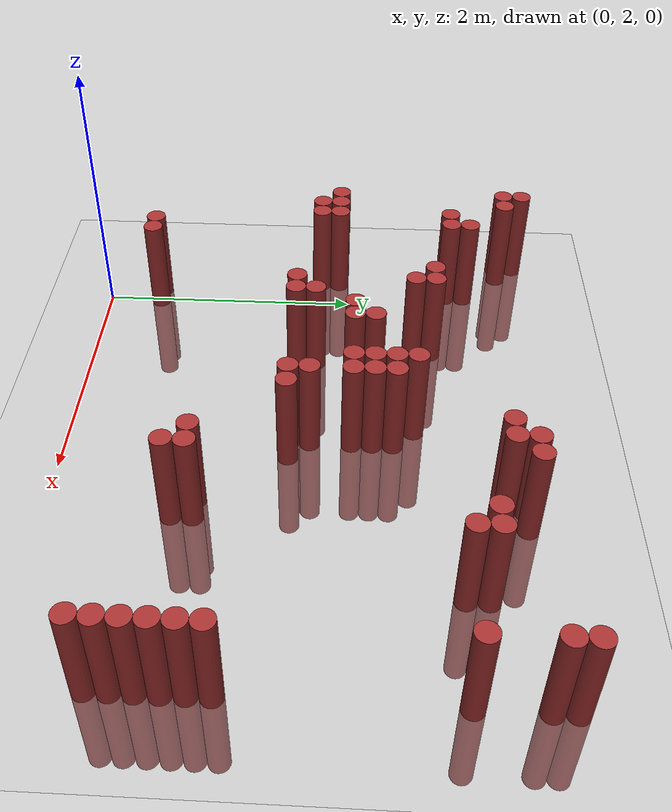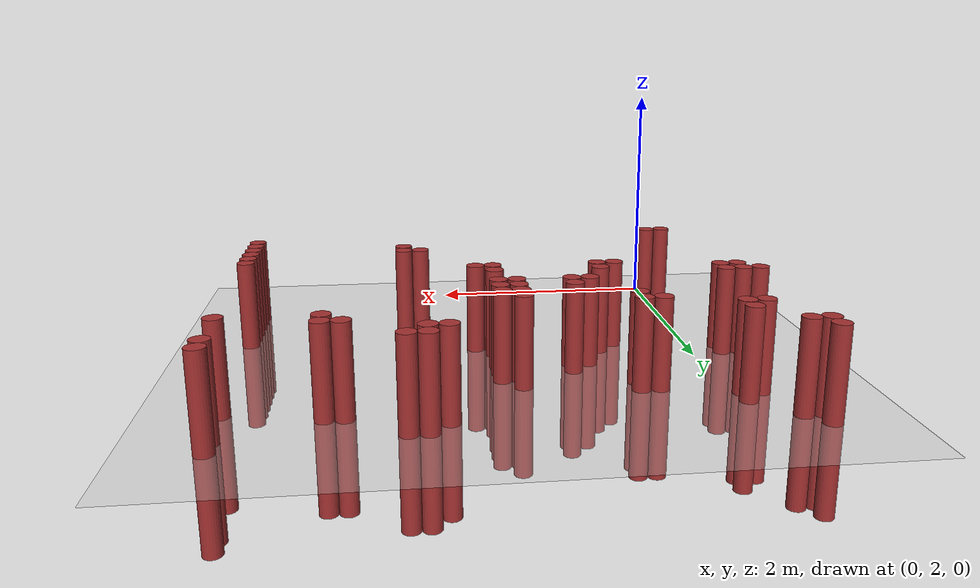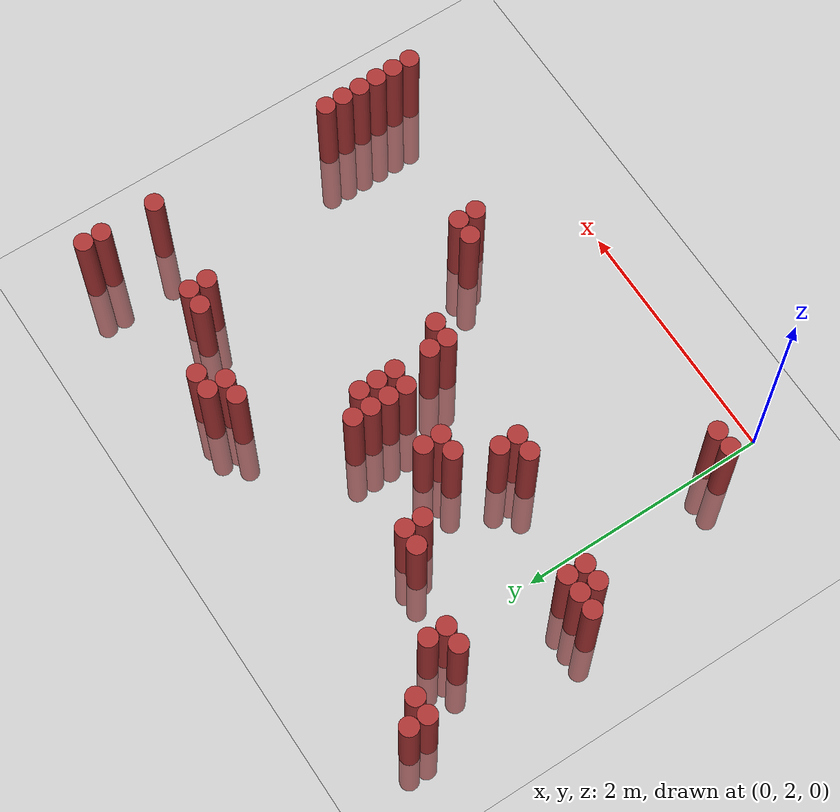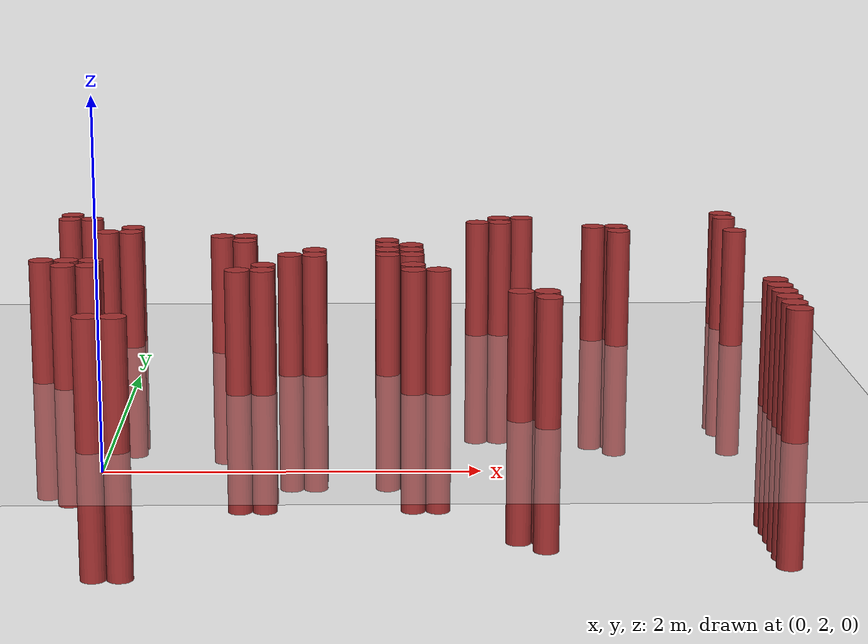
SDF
<sdf version="1.6">
 <world name="default">
  <model name="ground_plane">
   <static>1</static>
   <link name="link">
    <collision name="collision">
     <geometry><plane><normal>0 0 1</normal><size>100 100</size></plane></geometry>
     <surface><friction><ode><mu>100</mu><mu2>50</mu2></ode></friction></surface>
    </collision>
    <visual name="visual">
     <cast_shadows>0</cast_shadows>
     <geometry><plane><normal>0 0 1</normal><size>100 100</size></plane></geometry>
     <material>
      <script><uri>file://media/materials/scripts/gazebo.material</uri><name>Gazebo/Grey</name></script>
     </material>
    </visual>
   </link>
  </model>
  <model name="unit_cylinder_307">
   <static>1</static>
   <pose>-0.575000 3.925000 0.000000 0.000000 0.000000 0.000000</pose>
   <link name="link">
    <inertial>
     <mass>1</mass>
     <inertia><ixx>0.145833</ixx><ixy>0</ixy><ixz>0</ixz><iyy>0.145833</iyy><iyz>0</iyz><izz>0.125</izz></inertia>
    </inertial>
    <collision name="collision">
     <geometry><cylinder><radius>0.075000</radius><length>1.5</length></cylinder></geometry>
    </collision>
    <visual name="visual">
     <geometry><cylinder><radius>0.075000</radius><length>1.5</length></cylinder></geometry>
     <material>
      <ambient>0.648000 0.192000 0.192000 1</ambient>
      <diffuse>0.648000 0.192000 0.192000 1</diffuse>
     </material>
     <material>
      <script><name>Gazebo/Grey</name><uri>file://media/materials/scripts/gazebo.material</uri></script>
     </material>
    </visual>
   </link>
  </model>
  <model name="unit_cylinder_308">
   <static>1</static>
   <pose>-0.575000 5.275000 0.000000 0.000000 0.000000 0.000000</pose>
   <link name="link">
    <inertial>
     <mass>1</mass>
     <inertia><ixx>0.145833</ixx><ixy>0</ixy><ixz>0</ixz><iyy>0.145833</iyy><iyz>0</iyz><izz>0.125</izz></inertia>
    </inertial>
    <collision name="collision">
     <geometry><cylinder><radius>0.075000</radius><length>1.5</length></cylinder></geometry>
    </collision>
    <visual name="visual">
     <geometry><cylinder><radius>0.075000</radius><length>1.5</length></cylinder></geometry>
     <material>
      <ambient>0.648000 0.192000 0.192000 1</ambient>
      <diffuse>0.648000 0.192000 0.192000 1</diffuse>
     </material>
     <material>
      <script><name>Gazebo/Grey</name><uri>file://media/materials/scripts/gazebo.material</uri></script>
     </material>
    </visual>
   </link>
  </model>
  <model name="unit_cylinder_309">
   <static>1</static>
   <pose>-0.575000 5.425000 0.000000 0.000000 0.000000 0.000000</pose>
   <link name="link">
    <inertial>
     <mass>1</mass>
     <inertia><ixx>0.145833</ixx><ixy>0</ixy><ixz>0</ixz><iyy>0.145833</iyy><iyz>0</iyz><izz>0.125</izz></inertia>
    </inertial>
    <collision name="collision">
     <geometry><cylinder><radius>0.075000</radius><length>1.5</length></cylinder></geometry>
    </collision>
    <visual name="visual">
     <geometry><cylinder><radius>0.075000</radius><length>1.5</length></cylinder></geometry>
     <material>
      <ambient>0.648000 0.192000 0.192000 1</ambient>
      <diffuse>0.648000 0.192000 0.192000 1</diffuse>
     </material>
     <material>
      <script><name>Gazebo/Grey</name><uri>file://media/materials/scripts/gazebo.material</uri></script>
     </material>
    </visual>
   </link>
  </model>
  <model name="unit_cylinder_310">
   <static>1</static>
   <pose>-0.425000 3.775000 0.000000 0.000000 0.000000 0.000000</pose>
   <link name="link">
    <inertial>
     <mass>1</mass>
     <inertia><ixx>0.145833</ixx><ixy>0</ixy><ixz>0</ixz><iyy>0.145833</iyy><iyz>0</iyz><izz>0.125</izz></inertia>
    </inertial>
    <collision name="collision">
     <geometry><cylinder><radius>0.075000</radius><length>1.5</length></cylinder></geometry>
    </collision>
    <visual name="visual">
     <geometry><cylinder><radius>0.075000</radius><length>1.5</length></cylinder></geometry>
     <material>
      <ambient>0.648000 0.192000 0.192000 1</ambient>
      <diffuse>0.648000 0.192000 0.192000 1</diffuse>
     </material>
     <material>
      <script><name>Gazebo/Grey</name><uri>file://media/materials/scripts/gazebo.material</uri></script>
     </material>
    </visual>
   </link>
  </model>
  <model name="unit_cylinder_311">
   <static>1</static>
   <pose>-0.425000 3.925000 0.000000 0.000000 0.000000 0.000000</pose>
   <link name="link">
    <inertial>
     <mass>1</mass>
     <inertia><ixx>0.145833</ixx><ixy>0</ixy><ixz>0</ixz><iyy>0.145833</iyy><iyz>0</iyz><izz>0.125</izz></inertia>
    </inertial>
    <collision name="collision">
     <geometry><cylinder><radius>0.075000</radius><length>1.5</length></cylinder></geometry>
    </collision>
    <visual name="visual">
     <geometry><cylinder><radius>0.075000</radius><length>1.5</length></cylinder></geometry>
     <material>
      <ambient>0.648000 0.192000 0.192000 1</ambient>
      <diffuse>0.648000 0.192000 0.192000 1</diffuse>
     </material>
     <material>
      <script><name>Gazebo/Grey</name><uri>file://media/materials/scripts/gazebo.material</uri></script>
     </material>
    </visual>
   </link>
  </model>
  <model name="unit_cylinder_312">
   <static>1</static>
   <pose>-0.425000 5.275000 0.000000 0.000000 0.000000 0.000000</pose>
   <link name="link">
    <inertial>
     <mass>1</mass>
     <inertia><ixx>0.145833</ixx><ixy>0</ixy><ixz>0</ixz><iyy>0.145833</iyy><iyz>0</iyz><izz>0.125</izz></inertia>
    </inertial>
    <collision name="collision">
     <geometry><cylinder><radius>0.075000</radius><length>1.5</length></cylinder></geometry>
    </collision>
    <visual name="visual">
     <geometry><cylinder><radius>0.075000</radius><length>1.5</length></cylinder></geometry>
     <material>
      <ambient>0.648000 0.192000 0.192000 1</ambient>
      <diffuse>0.648000 0.192000 0.192000 1</diffuse>
     </material>
     <material>
      <script><name>Gazebo/Grey</name><uri>file://media/materials/scripts/gazebo.material</uri></script>
     </material>
    </visual>
   </link>
  </model>
  <model name="unit_cylinder_313">
   <static>1</static>
   <pose>-0.275000 3.775000 0.000000 0.000000 0.000000 0.000000</pose>
   <link name="link">
    <inertial>
     <mass>1</mass>
     <inertia><ixx>0.145833</ixx><ixy>0</ixy><ixz>0</ixz><iyy>0.145833</iyy><iyz>0</iyz><izz>0.125</izz></inertia>
    </inertial>
    <collision name="collision">
     <geometry><cylinder><radius>0.075000</radius><length>1.5</length></cylinder></geometry>
    </collision>
    <visual name="visual">
     <geometry><cylinder><radius>0.075000</radius><length>1.5</length></cylinder></geometry>
     <material>
      <ambient>0.648000 0.192000 0.192000 1</ambient>
      <diffuse>0.648000 0.192000 0.192000 1</diffuse>
     </material>
     <material>
      <script><name>Gazebo/Grey</name><uri>file://media/materials/scripts/gazebo.material</uri></script>
     </material>
    </visual>
   </link>
  </model>
  <model name="unit_cylinder_314">
   <static>1</static>
   <pose>-0.275000 3.925000 0.000000 0.000000 0.000000 0.000000</pose>
   <link name="link">
    <inertial>
     <mass>1</mass>
     <inertia><ixx>0.145833</ixx><ixy>0</ixy><ixz>0</ixz><iyy>0.145833</iyy><iyz>0</iyz><izz>0.125</izz></inertia>
    </inertial>
    <collision name="collision">
     <geometry><cylinder><radius>0.075000</radius><length>1.5</length></cylinder></geometry>
    </collision>
    <visual name="visual">
     <geometry><cylinder><radius>0.075000</radius><length>1.5</length></cylinder></geometry>
     <material>
      <ambient>0.648000 0.192000 0.192000 1</ambient>
      <diffuse>0.648000 0.192000 0.192000 1</diffuse>
     </material>
     <material>
      <script><name>Gazebo/Grey</name><uri>file://media/materials/scripts/gazebo.material</uri></script>
     </material>
    </visual>
   </link>
  </model>
  <model name="unit_cylinder_315">
   <static>1</static>
   <pose>-0.275000 4.825000 0.000000 0.000000 0.000000 0.000000</pose>
   <link name="link">
    <inertial>
     <mass>1</mass>
     <inertia><ixx>0.145833</ixx><ixy>0</ixy><ixz>0</ixz><iyy>0.145833</iyy><iyz>0</iyz><izz>0.125</izz></inertia>
    </inertial>
    <collision name="collision">
     <geometry><cylinder><radius>0.075000</radius><length>1.5</length></cylinder></geometry>
    </collision>
    <visual name="visual">
     <geometry><cylinder><radius>0.075000</radius><length>1.5</length></cylinder></geometry>
     <material>
      <ambient>0.648000 0.192000 0.192000 1</ambient>
      <diffuse>0.648000 0.192000 0.192000 1</diffuse>
     </material>
     <material>
      <script><name>Gazebo/Grey</name><uri>file://media/materials/scripts/gazebo.material</uri></script>
     </material>
    </visual>
   </link>
  </model>
  <model name="unit_cylinder_317">
   <static>1</static>
   <pose>-0.125000 2.425000 0.000000 0.000000 0.000000 0.000000</pose>
   <link name="link">
    <inertial>
     <mass>1</mass>
     <inertia><ixx>0.145833</ixx><ixy>0</ixy><ixz>0</ixz><iyy>0.145833</iyy><iyz>0</iyz><izz>0.125</izz></inertia>
    </inertial>
    <collision name="collision">
     <geometry><cylinder><radius>0.075000</radius><length>1.5</length></cylinder></geometry>
    </collision>
    <visual name="visual">
     <geometry><cylinder><radius>0.075000</radius><length>1.5</length></cylinder></geometry>
     <material>
      <ambient>0.648000 0.192000 0.192000 1</ambient>
      <diffuse>0.648000 0.192000 0.192000 1</diffuse>
     </material>
     <material>
      <script><name>Gazebo/Grey</name><uri>file://media/materials/scripts/gazebo.material</uri></script>
     </material>
    </visual>
   </link>
  </model>
  <model name="unit_cylinder_318">
   <static>1</static>
   <pose>-0.125000 4.825000 0.000000 0.000000 0.000000 0.000000</pose>
   <link name="link">
    <inertial>
     <mass>1</mass>
     <inertia><ixx>0.145833</ixx><ixy>0</ixy><ixz>0</ixz><iyy>0.145833</iyy><iyz>0</iyz><izz>0.125</izz></inertia>
    </inertial>
    <collision name="collision">
     <geometry><cylinder><radius>0.075000</radius><length>1.5</length></cylinder></geometry>
    </collision>
    <visual name="visual">
     <geometry><cylinder><radius>0.075000</radius><length>1.5</length></cylinder></geometry>
     <material>
      <ambient>0.648000 0.192000 0.192000 1</ambient>
      <diffuse>0.648000 0.192000 0.192000 1</diffuse>
     </material>
     <material>
      <script><name>Gazebo/Grey</name><uri>file://media/materials/scripts/gazebo.material</uri></script>
     </material>
    </visual>
   </link>
  </model>
  <model name="unit_cylinder_319">
   <static>1</static>
   <pose>-0.125000 4.975000 0.000000 0.000000 0.000000 0.000000</pose>
   <link name="link">
    <inertial>
     <mass>1</mass>
     <inertia><ixx>0.145833</ixx><ixy>0</ixy><ixz>0</ixz><iyy>0.145833</iyy><iyz>0</iyz><izz>0.125</izz></inertia>
    </inertial>
    <collision name="collision">
     <geometry><cylinder><radius>0.075000</radius><length>1.5</length></cylinder></geometry>
    </collision>
    <visual name="visual">
     <geometry><cylinder><radius>0.075000</radius><length>1.5</length></cylinder></geometry>
     <material>
      <ambient>0.648000 0.192000 0.192000 1</ambient>
      <diffuse>0.648000 0.192000 0.192000 1</diffuse>
     </material>
     <material>
      <script><name>Gazebo/Grey</name><uri>file://media/materials/scripts/gazebo.material</uri></script>
     </material>
    </visual>
   </link>
  </model>
  <model name="unit_cylinder_320">
   <static>1</static>
   <pose>0.025000 2.425000 0.000000 0.000000 0.000000 0.000000</pose>
   <link name="link">
    <inertial>
     <mass>1</mass>
     <inertia><ixx>0.145833</ixx><ixy>0</ixy><ixz>0</ixz><iyy>0.145833</iyy><iyz>0</iyz><izz>0.125</izz></inertia>
    </inertial>
    <collision name="collision">
     <geometry><cylinder><radius>0.075000</radius><length>1.5</length></cylinder></geometry>
    </collision>
    <visual name="visual">
     <geometry><cylinder><radius>0.075000</radius><length>1.5</length></cylinder></geometry>
     <material>
      <ambient>0.648000 0.192000 0.192000 1</ambient>
      <diffuse>0.648000 0.192000 0.192000 1</diffuse>
     </material>
     <material>
      <script><name>Gazebo/Grey</name><uri>file://media/materials/scripts/gazebo.material</uri></script>
     </material>
    </visual>
   </link>
  </model>
  <model name="unit_cylinder_328">
   <static>1</static>
   <pose>0.475000 4.675000 0.000000 0.000000 0.000000 0.000000</pose>
   <link name="link">
    <inertial>
     <mass>1</mass>
     <inertia><ixx>0.145833</ixx><ixy>0</ixy><ixz>0</ixz><iyy>0.145833</iyy><iyz>0</iyz><izz>0.125</izz></inertia>
    </inertial>
    <collision name="collision">
     <geometry><cylinder><radius>0.075000</radius><length>1.5</length></cylinder></geometry>
    </collision>
    <visual name="visual">
     <geometry><cylinder><radius>0.075000</radius><length>1.5</length></cylinder></geometry>
     <material>
      <ambient>0.648000 0.192000 0.192000 1</ambient>
      <diffuse>0.648000 0.192000 0.192000 1</diffuse>
     </material>
     <material>
      <script><name>Gazebo/Grey</name><uri>file://media/materials/scripts/gazebo.material</uri></script>
     </material>
    </visual>
   </link>
  </model>
  <model name="unit_cylinder_331">
   <static>1</static>
   <pose>0.625000 3.625000 0.000000 0.000000 0.000000 0.000000</pose>
   <link name="link">
    <inertial>
     <mass>1</mass>
     <inertia><ixx>0.145833</ixx><ixy>0</ixy><ixz>0</ixz><iyy>0.145833</iyy><iyz>0</iyz><izz>0.125</izz></inertia>
    </inertial>
    <collision name="collision">
     <geometry><cylinder><radius>0.075000</radius><length>1.5</length></cylinder></geometry>
    </collision>
    <visual name="visual">
     <geometry><cylinder><radius>0.075000</radius><length>1.5</length></cylinder></geometry>
     <material>
      <ambient>0.648000 0.192000 0.192000 1</ambient>
      <diffuse>0.648000 0.192000 0.192000 1</diffuse>
     </material>
     <material>
      <script><name>Gazebo/Grey</name><uri>file://media/materials/scripts/gazebo.material</uri></script>
     </material>
    </visual>
   </link>
  </model>
  <model name="unit_cylinder_332">
   <static>1</static>
   <pose>0.625000 4.525000 0.000000 0.000000 0.000000 0.000000</pose>
   <link name="link">
    <inertial>
     <mass>1</mass>
     <inertia><ixx>0.145833</ixx><ixy>0</ixy><ixz>0</ixz><iyy>0.145833</iyy><iyz>0</iyz><izz>0.125</izz></inertia>
    </inertial>
    <collision name="collision">
     <geometry><cylinder><radius>0.075000</radius><length>1.5</length></cylinder></geometry>
    </collision>
    <visual name="visual">
     <geometry><cylinder><radius>0.075000</radius><length>1.5</length></cylinder></geometry>
     <material>
      <ambient>0.648000 0.192000 0.192000 1</ambient>
      <diffuse>0.648000 0.192000 0.192000 1</diffuse>
     </material>
     <material>
      <script><name>Gazebo/Grey</name><uri>file://media/materials/scripts/gazebo.material</uri></script>
     </material>
    </visual>
   </link>
  </model>
  <model name="unit_cylinder_333">
   <static>1</static>
   <pose>0.625000 4.675000 0.000000 0.000000 0.000000 0.000000</pose>
   <link name="link">
    <inertial>
     <mass>1</mass>
     <inertia><ixx>0.145833</ixx><ixy>0</ixy><ixz>0</ixz><iyy>0.145833</iyy><iyz>0</iyz><izz>0.125</izz></inertia>
    </inertial>
    <collision name="collision">
     <geometry><cylinder><radius>0.075000</radius><length>1.5</length></cylinder></geometry>
    </collision>
    <visual name="visual">
     <geometry><cylinder><radius>0.075000</radius><length>1.5</length></cylinder></geometry>
     <material>
      <ambient>0.648000 0.192000 0.192000 1</ambient>
      <diffuse>0.648000 0.192000 0.192000 1</diffuse>
     </material>
     <material>
      <script><name>Gazebo/Grey</name><uri>file://media/materials/scripts/gazebo.material</uri></script>
     </material>
    </visual>
   </link>
  </model>
  <model name="unit_cylinder_336">
   <static>1</static>
   <pose>0.775000 3.625000 0.000000 0.000000 0.000000 0.000000</pose>
   <link name="link">
    <inertial>
     <mass>1</mass>
     <inertia><ixx>0.145833</ixx><ixy>0</ixy><ixz>0</ixz><iyy>0.145833</iyy><iyz>0</iyz><izz>0.125</izz></inertia>
    </inertial>
    <collision name="collision">
     <geometry><cylinder><radius>0.075000</radius><length>1.5</length></cylinder></geometry>
    </collision>
    <visual name="visual">
     <geometry><cylinder><radius>0.075000</radius><length>1.5</length></cylinder></geometry>
     <material>
      <ambient>0.648000 0.192000 0.192000 1</ambient>
      <diffuse>0.648000 0.192000 0.192000 1</diffuse>
     </material>
     <material>
      <script><name>Gazebo/Grey</name><uri>file://media/materials/scripts/gazebo.material</uri></script>
     </material>
    </visual>
   </link>
  </model>
  <model name="unit_cylinder_337">
   <static>1</static>
   <pose>0.775000 3.775000 0.000000 0.000000 0.000000 0.000000</pose>
   <link name="link">
    <inertial>
     <mass>1</mass>
     <inertia><ixx>0.145833</ixx><ixy>0</ixy><ixz>0</ixz><iyy>0.145833</iyy><iyz>0</iyz><izz>0.125</izz></inertia>
    </inertial>
    <collision name="collision">
     <geometry><cylinder><radius>0.075000</radius><length>1.5</length></cylinder></geometry>
    </collision>
    <visual name="visual">
     <geometry><cylinder><radius>0.075000</radius><length>1.5</length></cylinder></geometry>
     <material>
      <ambient>0.648000 0.192000 0.192000 1</ambient>
      <diffuse>0.648000 0.192000 0.192000 1</diffuse>
     </material>
     <material>
      <script><name>Gazebo/Grey</name><uri>file://media/materials/scripts/gazebo.material</uri></script>
     </material>
    </visual>
   </link>
  </model>
  <model name="unit_cylinder_340">
   <static>1</static>
   <pose>0.925000 4.075000 0.000000 0.000000 0.000000 0.000000</pose>
   <link name="link">
    <inertial>
     <mass>1</mass>
     <inertia><ixx>0.145833</ixx><ixy>0</ixy><ixz>0</ixz><iyy>0.145833</iyy><iyz>0</iyz><izz>0.125</izz></inertia>
    </inertial>
    <collision name="collision">
     <geometry><cylinder><radius>0.075000</radius><length>1.5</length></cylinder></geometry>
    </collision>
    <visual name="visual">
     <geometry><cylinder><radius>0.075000</radius><length>1.5</length></cylinder></geometry>
     <material>
      <ambient>0.648000 0.192000 0.192000 1</ambient>
      <diffuse>0.648000 0.192000 0.192000 1</diffuse>
     </material>
     <material>
      <script><name>Gazebo/Grey</name><uri>file://media/materials/scripts/gazebo.material</uri></script>
     </material>
    </visual>
   </link>
  </model>
  <model name="unit_cylinder_342">
   <static>1</static>
   <pose>1.075000 4.075000 0.000000 0.000000 0.000000 0.000000</pose>
   <link name="link">
    <inertial>
     <mass>1</mass>
     <inertia><ixx>0.145833</ixx><ixy>0</ixy><ixz>0</ixz><iyy>0.145833</iyy><iyz>0</iyz><izz>0.125</izz></inertia>
    </inertial>
    <collision name="collision">
     <geometry><cylinder><radius>0.075000</radius><length>1.5</length></cylinder></geometry>
    </collision>
    <visual name="visual">
     <geometry><cylinder><radius>0.075000</radius><length>1.5</length></cylinder></geometry>
     <material>
      <ambient>0.648000 0.192000 0.192000 1</ambient>
      <diffuse>0.648000 0.192000 0.192000 1</diffuse>
     </material>
     <material>
      <script><name>Gazebo/Grey</name><uri>file://media/materials/scripts/gazebo.material</uri></script>
     </material>
    </visual>
   </link>
  </model>
  <model name="unit_cylinder_343">
   <static>1</static>
   <pose>1.075000 4.225000 0.000000 0.000000 0.000000 0.000000</pose>
   <link name="link">
    <inertial>
     <mass>1</mass>
     <inertia><ixx>0.145833</ixx><ixy>0</ixy><ixz>0</ixz><iyy>0.145833</iyy><iyz>0</iyz><izz>0.125</izz></inertia>
    </inertial>
    <collision name="collision">
     <geometry><cylinder><radius>0.075000</radius><length>1.5</length></cylinder></geometry>
    </collision>
    <visual name="visual">
     <geometry><cylinder><radius>0.075000</radius><length>1.5</length></cylinder></geometry>
     <material>
      <ambient>0.648000 0.192000 0.192000 1</ambient>
      <diffuse>0.648000 0.192000 0.192000 1</diffuse>
     </material>
     <material>
      <script><name>Gazebo/Grey</name><uri>file://media/materials/scripts/gazebo.material</uri></script>
     </material>
    </visual>
   </link>
  </model>
  <model name="unit_cylinder_347">
   <static>1</static>
   <pose>1.525000 4.075000 0.000000 0.000000 0.000000 0.000000</pose>
   <link name="link">
    <inertial>
     <mass>1</mass>
     <inertia><ixx>0.145833</ixx><ixy>0</ixy><ixz>0</ixz><iyy>0.145833</iyy><iyz>0</iyz><izz>0.125</izz></inertia>
    </inertial>
    <collision name="collision">
     <geometry><cylinder><radius>0.075000</radius><length>1.5</length></cylinder></geometry>
    </collision>
    <visual name="visual">
     <geometry><cylinder><radius>0.075000</radius><length>1.5</length></cylinder></geometry>
     <material>
      <ambient>0.648000 0.192000 0.192000 1</ambient>
      <diffuse>0.648000 0.192000 0.192000 1</diffuse>
     </material>
     <material>
      <script><name>Gazebo/Grey</name><uri>file://media/materials/scripts/gazebo.material</uri></script>
     </material>
    </visual>
   </link>
  </model>
  <model name="unit_cylinder_348">
   <static>1</static>
   <pose>1.525000 4.225000 0.000000 0.000000 0.000000 0.000000</pose>
   <link name="link">
    <inertial>
     <mass>1</mass>
     <inertia><ixx>0.145833</ixx><ixy>0</ixy><ixz>0</ixz><iyy>0.145833</iyy><iyz>0</iyz><izz>0.125</izz></inertia>
    </inertial>
    <collision name="collision">
     <geometry><cylinder><radius>0.075000</radius><length>1.5</length></cylinder></geometry>
    </collision>
    <visual name="visual">
     <geometry><cylinder><radius>0.075000</radius><length>1.5</length></cylinder></geometry>
     <material>
      <ambient>0.648000 0.192000 0.192000 1</ambient>
      <diffuse>0.648000 0.192000 0.192000 1</diffuse>
     </material>
     <material>
      <script><name>Gazebo/Grey</name><uri>file://media/materials/scripts/gazebo.material</uri></script>
     </material>
    </visual>
   </link>
  </model>
  <model name="unit_cylinder_349">
   <static>1</static>
   <pose>1.525000 4.375000 0.000000 0.000000 0.000000 0.000000</pose>
   <link name="link">
    <inertial>
     <mass>1</mass>
     <inertia><ixx>0.145833</ixx><ixy>0</ixy><ixz>0</ixz><iyy>0.145833</iyy><iyz>0</iyz><izz>0.125</izz></inertia>
    </inertial>
    <collision name="collision">
     <geometry><cylinder><radius>0.075000</radius><length>1.5</length></cylinder></geometry>
    </collision>
    <visual name="visual">
     <geometry><cylinder><radius>0.075000</radius><length>1.5</length></cylinder></geometry>
     <material>
      <ambient>0.648000 0.192000 0.192000 1</ambient>
      <diffuse>0.648000 0.192000 0.192000 1</diffuse>
     </material>
     <material>
      <script><name>Gazebo/Grey</name><uri>file://media/materials/scripts/gazebo.material</uri></script>
     </material>
    </visual>
   </link>
  </model>
  <model name="unit_cylinder_350">
   <static>1</static>
   <pose>1.525000 4.525000 0.000000 0.000000 0.000000 0.000000</pose>
   <link name="link">
    <inertial>
     <mass>1</mass>
     <inertia><ixx>0.145833</ixx><ixy>0</ixy><ixz>0</ixz><iyy>0.145833</iyy><iyz>0</iyz><izz>0.125</izz></inertia>
    </inertial>
    <collision name="collision">
     <geometry><cylinder><radius>0.075000</radius><length>1.5</length></cylinder></geometry>
    </collision>
    <visual name="visual">
     <geometry><cylinder><radius>0.075000</radius><length>1.5</length></cylinder></geometry>
     <material>
      <ambient>0.648000 0.192000 0.192000 1</ambient>
      <diffuse>0.648000 0.192000 0.192000 1</diffuse>
     </material>
     <material>
      <script><name>Gazebo/Grey</name><uri>file://media/materials/scripts/gazebo.material</uri></script>
     </material>
    </visual>
   </link>
  </model>
  <model name="unit_cylinder_351">
   <static>1</static>
   <pose>1.675000 3.625000 0.000000 0.000000 0.000000 0.000000</pose>
   <link name="link">
    <inertial>
     <mass>1</mass>
     <inertia><ixx>0.145833</ixx><ixy>0</ixy><ixz>0</ixz><iyy>0.145833</iyy><iyz>0</iyz><izz>0.125</izz></inertia>
    </inertial>
    <collision name="collision">
     <geometry><cylinder><radius>0.075000</radius><length>1.5</length></cylinder></geometry>
    </collision>
    <visual name="visual">
     <geometry><cylinder><radius>0.075000</radius><length>1.5</length></cylinder></geometry>
     <material>
      <ambient>0.648000 0.192000 0.192000 1</ambient>
      <diffuse>0.648000 0.192000 0.192000 1</diffuse>
     </material>
     <material>
      <script><name>Gazebo/Grey</name><uri>file://media/materials/scripts/gazebo.material</uri></script>
     </material>
    </visual>
   </link>
  </model>
  <model name="unit_cylinder_352">
   <static>1</static>
   <pose>1.675000 3.775000 0.000000 0.000000 0.000000 0.000000</pose>
   <link name="link">
    <inertial>
     <mass>1</mass>
     <inertia><ixx>0.145833</ixx><ixy>0</ixy><ixz>0</ixz><iyy>0.145833</iyy><iyz>0</iyz><izz>0.125</izz></inertia>
    </inertial>
    <collision name="collision">
     <geometry><cylinder><radius>0.075000</radius><length>1.5</length></cylinder></geometry>
    </collision>
    <visual name="visual">
     <geometry><cylinder><radius>0.075000</radius><length>1.5</length></cylinder></geometry>
     <material>
      <ambient>0.648000 0.192000 0.192000 1</ambient>
      <diffuse>0.648000 0.192000 0.192000 1</diffuse>
     </material>
     <material>
      <script><name>Gazebo/Grey</name><uri>file://media/materials/scripts/gazebo.material</uri></script>
     </material>
    </visual>
   </link>
  </model>
  <model name="unit_cylinder_353">
   <static>1</static>
   <pose>1.675000 4.075000 0.000000 0.000000 0.000000 0.000000</pose>
   <link name="link">
    <inertial>
     <mass>1</mass>
     <inertia><ixx>0.145833</ixx><ixy>0</ixy><ixz>0</ixz><iyy>0.145833</iyy><iyz>0</iyz><izz>0.125</izz></inertia>
    </inertial>
    <collision name="collision">
     <geometry><cylinder><radius>0.075000</radius><length>1.5</length></cylinder></geometry>
    </collision>
    <visual name="visual">
     <geometry><cylinder><radius>0.075000</radius><length>1.5</length></cylinder></geometry>
     <material>
      <ambient>0.648000 0.192000 0.192000 1</ambient>
      <diffuse>0.648000 0.192000 0.192000 1</diffuse>
     </material>
     <material>
      <script><name>Gazebo/Grey</name><uri>file://media/materials/scripts/gazebo.material</uri></script>
     </material>
    </visual>
   </link>
  </model>
  <model name="unit_cylinder_354">
   <static>1</static>
   <pose>1.675000 4.225000 0.000000 0.000000 0.000000 0.000000</pose>
   <link name="link">
    <inertial>
     <mass>1</mass>
     <inertia><ixx>0.145833</ixx><ixy>0</ixy><ixz>0</ixz><iyy>0.145833</iyy><iyz>0</iyz><izz>0.125</izz></inertia>
    </inertial>
    <collision name="collision">
     <geometry><cylinder><radius>0.075000</radius><length>1.5</length></cylinder></geometry>
    </collision>
    <visual name="visual">
     <geometry><cylinder><radius>0.075000</radius><length>1.5</length></cylinder></geometry>
     <material>
      <ambient>0.648000 0.192000 0.192000 1</ambient>
      <diffuse>0.648000 0.192000 0.192000 1</diffuse>
     </material>
     <material>
      <script><name>Gazebo/Grey</name><uri>file://media/materials/scripts/gazebo.material</uri></script>
     </material>
    </visual>
   </link>
  </model>
  <model name="unit_cylinder_355">
   <static>1</static>
   <pose>1.675000 4.375000 0.000000 0.000000 0.000000 0.000000</pose>
   <link name="link">
    <inertial>
     <mass>1</mass>
     <inertia><ixx>0.145833</ixx><ixy>0</ixy><ixz>0</ixz><iyy>0.145833</iyy><iyz>0</iyz><izz>0.125</izz></inertia>
    </inertial>
    <collision name="collision">
     <geometry><cylinder><radius>0.075000</radius><length>1.5</length></cylinder></geometry>
    </collision>
    <visual name="visual">
     <geometry><cylinder><radius>0.075000</radius><length>1.5</length></cylinder></geometry>
     <material>
      <ambient>0.648000 0.192000 0.192000 1</ambient>
      <diffuse>0.648000 0.192000 0.192000 1</diffuse>
     </material>
     <material>
      <script><name>Gazebo/Grey</name><uri>file://media/materials/scripts/gazebo.material</uri></script>
     </material>
    </visual>
   </link>
  </model>
  <model name="unit_cylinder_358">
   <static>1</static>
   <pose>1.825000 3.625000 0.000000 0.000000 0.000000 0.000000</pose>
   <link name="link">
    <inertial>
     <mass>1</mass>
     <inertia><ixx>0.145833</ixx><ixy>0</ixy><ixz>0</ixz><iyy>0.145833</iyy><iyz>0</iyz><izz>0.125</izz></inertia>
    </inertial>
    <collision name="collision">
     <geometry><cylinder><radius>0.075000</radius><length>1.5</length></cylinder></geometry>
    </collision>
    <visual name="visual">
     <geometry><cylinder><radius>0.075000</radius><length>1.5</length></cylinder></geometry>
     <material>
      <ambient>0.648000 0.192000 0.192000 1</ambient>
      <diffuse>0.648000 0.192000 0.192000 1</diffuse>
     </material>
     <material>
      <script><name>Gazebo/Grey</name><uri>file://media/materials/scripts/gazebo.material</uri></script>
     </material>
    </visual>
   </link>
  </model>
  <model name="unit_cylinder_362">
   <static>1</static>
   <pose>2.125000 5.125000 0.000000 0.000000 0.000000 0.000000</pose>
   <link name="link">
    <inertial>
     <mass>1</mass>
     <inertia><ixx>0.145833</ixx><ixy>0</ixy><ixz>0</ixz><iyy>0.145833</iyy><iyz>0</iyz><izz>0.125</izz></inertia>
    </inertial>
    <collision name="collision">
     <geometry><cylinder><radius>0.075000</radius><length>1.5</length></cylinder></geometry>
    </collision>
    <visual name="visual">
     <geometry><cylinder><radius>0.075000</radius><length>1.5</length></cylinder></geometry>
     <material>
      <ambient>0.648000 0.192000 0.192000 1</ambient>
      <diffuse>0.648000 0.192000 0.192000 1</diffuse>
     </material>
     <material>
      <script><name>Gazebo/Grey</name><uri>file://media/materials/scripts/gazebo.material</uri></script>
     </material>
    </visual>
   </link>
  </model>
  <model name="unit_cylinder_365">
   <static>1</static>
   <pose>2.275000 3.025000 0.000000 0.000000 0.000000 0.000000</pose>
   <link name="link">
    <inertial>
     <mass>1</mass>
     <inertia><ixx>0.145833</ixx><ixy>0</ixy><ixz>0</ixz><iyy>0.145833</iyy><iyz>0</iyz><izz>0.125</izz></inertia>
    </inertial>
    <collision name="collision">
     <geometry><cylinder><radius>0.075000</radius><length>1.5</length></cylinder></geometry>
    </collision>
    <visual name="visual">
     <geometry><cylinder><radius>0.075000</radius><length>1.5</length></cylinder></geometry>
     <material>
      <ambient>0.648000 0.192000 0.192000 1</ambient>
      <diffuse>0.648000 0.192000 0.192000 1</diffuse>
     </material>
     <material>
      <script><name>Gazebo/Grey</name><uri>file://media/materials/scripts/gazebo.material</uri></script>
     </material>
    </visual>
   </link>
  </model>
  <model name="unit_cylinder_366">
   <static>1</static>
   <pose>2.275000 5.125000 0.000000 0.000000 0.000000 0.000000</pose>
   <link name="link">
    <inertial>
     <mass>1</mass>
     <inertia><ixx>0.145833</ixx><ixy>0</ixy><ixz>0</ixz><iyy>0.145833</iyy><iyz>0</iyz><izz>0.125</izz></inertia>
    </inertial>
    <collision name="collision">
     <geometry><cylinder><radius>0.075000</radius><length>1.5</length></cylinder></geometry>
    </collision>
    <visual name="visual">
     <geometry><cylinder><radius>0.075000</radius><length>1.5</length></cylinder></geometry>
     <material>
      <ambient>0.648000 0.192000 0.192000 1</ambient>
      <diffuse>0.648000 0.192000 0.192000 1</diffuse>
     </material>
     <material>
      <script><name>Gazebo/Grey</name><uri>file://media/materials/scripts/gazebo.material</uri></script>
     </material>
    </visual>
   </link>
  </model>
  <model name="unit_cylinder_367">
   <static>1</static>
   <pose>2.275000 5.275000 0.000000 0.000000 0.000000 0.000000</pose>
   <link name="link">
    <inertial>
     <mass>1</mass>
     <inertia><ixx>0.145833</ixx><ixy>0</ixy><ixz>0</ixz><iyy>0.145833</iyy><iyz>0</iyz><izz>0.125</izz></inertia>
    </inertial>
    <collision name="collision">
     <geometry><cylinder><radius>0.075000</radius><length>1.5</length></cylinder></geometry>
    </collision>
    <visual name="visual">
     <geometry><cylinder><radius>0.075000</radius><length>1.5</length></cylinder></geometry>
     <material>
      <ambient>0.648000 0.192000 0.192000 1</ambient>
      <diffuse>0.648000 0.192000 0.192000 1</diffuse>
     </material>
     <material>
      <script><name>Gazebo/Grey</name><uri>file://media/materials/scripts/gazebo.material</uri></script>
     </material>
    </visual>
   </link>
  </model>
  <model name="unit_cylinder_368">
   <static>1</static>
   <pose>2.425000 2.875000 0.000000 0.000000 0.000000 0.000000</pose>
   <link name="link">
    <inertial>
     <mass>1</mass>
     <inertia><ixx>0.145833</ixx><ixy>0</ixy><ixz>0</ixz><iyy>0.145833</iyy><iyz>0</iyz><izz>0.125</izz></inertia>
    </inertial>
    <collision name="collision">
     <geometry><cylinder><radius>0.075000</radius><length>1.5</length></cylinder></geometry>
    </collision>
    <visual name="visual">
     <geometry><cylinder><radius>0.075000</radius><length>1.5</length></cylinder></geometry>
     <material>
      <ambient>0.648000 0.192000 0.192000 1</ambient>
      <diffuse>0.648000 0.192000 0.192000 1</diffuse>
     </material>
     <material>
      <script><name>Gazebo/Grey</name><uri>file://media/materials/scripts/gazebo.material</uri></script>
     </material>
    </visual>
   </link>
  </model>
  <model name="unit_cylinder_369">
   <static>1</static>
   <pose>2.425000 3.025000 0.000000 0.000000 0.000000 0.000000</pose>
   <link name="link">
    <inertial>
     <mass>1</mass>
     <inertia><ixx>0.145833</ixx><ixy>0</ixy><ixz>0</ixz><iyy>0.145833</iyy><iyz>0</iyz><izz>0.125</izz></inertia>
    </inertial>
    <collision name="collision">
     <geometry><cylinder><radius>0.075000</radius><length>1.5</length></cylinder></geometry>
    </collision>
    <visual name="visual">
     <geometry><cylinder><radius>0.075000</radius><length>1.5</length></cylinder></geometry>
     <material>
      <ambient>0.648000 0.192000 0.192000 1</ambient>
      <diffuse>0.648000 0.192000 0.192000 1</diffuse>
     </material>
     <material>
      <script><name>Gazebo/Grey</name><uri>file://media/materials/scripts/gazebo.material</uri></script>
     </material>
    </visual>
   </link>
  </model>
  <model name="unit_cylinder_370">
   <static>1</static>
   <pose>2.425000 5.275000 0.000000 0.000000 0.000000 0.000000</pose>
   <link name="link">
    <inertial>
     <mass>1</mass>
     <inertia><ixx>0.145833</ixx><ixy>0</ixy><ixz>0</ixz><iyy>0.145833</iyy><iyz>0</iyz><izz>0.125</izz></inertia>
    </inertial>
    <collision name="collision">
     <geometry><cylinder><radius>0.075000</radius><length>1.5</length></cylinder></geometry>
    </collision>
    <visual name="visual">
     <geometry><cylinder><radius>0.075000</radius><length>1.5</length></cylinder></geometry>
     <material>
      <ambient>0.648000 0.192000 0.192000 1</ambient>
      <diffuse>0.648000 0.192000 0.192000 1</diffuse>
     </material>
     <material>
      <script><name>Gazebo/Grey</name><uri>file://media/materials/scripts/gazebo.material</uri></script>
     </material>
    </visual>
   </link>
  </model>
  <model name="unit_cylinder_377">
   <static>1</static>
   <pose>2.875000 4.975000 0.000000 0.000000 0.000000 0.000000</pose>
   <link name="link">
    <inertial>
     <mass>1</mass>
     <inertia><ixx>0.145833</ixx><ixy>0</ixy><ixz>0</ixz><iyy>0.145833</iyy><iyz>0</iyz><izz>0.125</izz></inertia>
    </inertial>
    <collision name="collision">
     <geometry><cylinder><radius>0.075000</radius><length>1.5</length></cylinder></geometry>
    </collision>
    <visual name="visual">
     <geometry><cylinder><radius>0.075000</radius><length>1.5</length></cylinder></geometry>
     <material>
      <ambient>0.648000 0.192000 0.192000 1</ambient>
      <diffuse>0.648000 0.192000 0.192000 1</diffuse>
     </material>
     <material>
      <script><name>Gazebo/Grey</name><uri>file://media/materials/scripts/gazebo.material</uri></script>
     </material>
    </visual>
   </link>
  </model>
  <model name="unit_cylinder_378">
   <static>1</static>
   <pose>3.025000 4.825000 0.000000 0.000000 0.000000 0.000000</pose>
   <link name="link">
    <inertial>
     <mass>1</mass>
     <inertia><ixx>0.145833</ixx><ixy>0</ixy><ixz>0</ixz><iyy>0.145833</iyy><iyz>0</iyz><izz>0.125</izz></inertia>
    </inertial>
    <collision name="collision">
     <geometry><cylinder><radius>0.075000</radius><length>1.5</length></cylinder></geometry>
    </collision>
    <visual name="visual">
     <geometry><cylinder><radius>0.075000</radius><length>1.5</length></cylinder></geometry>
     <material>
      <ambient>0.648000 0.192000 0.192000 1</ambient>
      <diffuse>0.648000 0.192000 0.192000 1</diffuse>
     </material>
     <material>
      <script><name>Gazebo/Grey</name><uri>file://media/materials/scripts/gazebo.material</uri></script>
     </material>
    </visual>
   </link>
  </model>
  <model name="unit_cylinder_379">
   <static>1</static>
   <pose>3.025000 4.975000 0.000000 0.000000 0.000000 0.000000</pose>
   <link name="link">
    <inertial>
     <mass>1</mass>
     <inertia><ixx>0.145833</ixx><ixy>0</ixy><ixz>0</ixz><iyy>0.145833</iyy><iyz>0</iyz><izz>0.125</izz></inertia>
    </inertial>
    <collision name="collision">
     <geometry><cylinder><radius>0.075000</radius><length>1.5</length></cylinder></geometry>
    </collision>
    <visual name="visual">
     <geometry><cylinder><radius>0.075000</radius><length>1.5</length></cylinder></geometry>
     <material>
      <ambient>0.648000 0.192000 0.192000 1</ambient>
      <diffuse>0.648000 0.192000 0.192000 1</diffuse>
     </material>
     <material>
      <script><name>Gazebo/Grey</name><uri>file://media/materials/scripts/gazebo.material</uri></script>
     </material>
    </visual>
   </link>
  </model>
  <model name="unit_cylinder_402">
   <static>1</static>
   <pose>3.775000 2.575000 0.000000 0.000000 0.000000 0.000000</pose>
   <link name="link">
    <inertial>
     <mass>1</mass>
     <inertia><ixx>0.145833</ixx><ixy>0</ixy><ixz>0</ixz><iyy>0.145833</iyy><iyz>0</iyz><izz>0.125</izz></inertia>
    </inertial>
    <collision name="collision">
     <geometry><cylinder><radius>0.075000</radius><length>1.5</length></cylinder></geometry>
    </collision>
    <visual name="visual">
     <geometry><cylinder><radius>0.075000</radius><length>1.5</length></cylinder></geometry>
     <material>
      <ambient>0.648000 0.192000 0.192000 1</ambient>
      <diffuse>0.648000 0.192000 0.192000 1</diffuse>
     </material>
     <material>
      <script><name>Gazebo/Grey</name><uri>file://media/materials/scripts/gazebo.material</uri></script>
     </material>
    </visual>
   </link>
  </model>
  <model name="unit_cylinder_403">
   <static>1</static>
   <pose>3.775000 2.725000 0.000000 0.000000 0.000000 0.000000</pose>
   <link name="link">
    <inertial>
     <mass>1</mass>
     <inertia><ixx>0.145833</ixx><ixy>0</ixy><ixz>0</ixz><iyy>0.145833</iyy><iyz>0</iyz><izz>0.125</izz></inertia>
    </inertial>
    <collision name="collision">
     <geometry><cylinder><radius>0.075000</radius><length>1.5</length></cylinder></geometry>
    </collision>
    <visual name="visual">
     <geometry><cylinder><radius>0.075000</radius><length>1.5</length></cylinder></geometry>
     <material>
      <ambient>0.648000 0.192000 0.192000 1</ambient>
      <diffuse>0.648000 0.192000 0.192000 1</diffuse>
     </material>
     <material>
      <script><name>Gazebo/Grey</name><uri>file://media/materials/scripts/gazebo.material</uri></script>
     </material>
    </visual>
   </link>
  </model>
  <model name="unit_cylinder_404">
   <static>1</static>
   <pose>3.775000 2.875000 0.000000 0.000000 0.000000 0.000000</pose>
   <link name="link">
    <inertial>
     <mass>1</mass>
     <inertia><ixx>0.145833</ixx><ixy>0</ixy><ixz>0</ixz><iyy>0.145833</iyy><iyz>0</iyz><izz>0.125</izz></inertia>
    </inertial>
    <collision name="collision">
     <geometry><cylinder><radius>0.075000</radius><length>1.5</length></cylinder></geometry>
    </collision>
    <visual name="visual">
     <geometry><cylinder><radius>0.075000</radius><length>1.5</length></cylinder></geometry>
     <material>
      <ambient>0.648000 0.192000 0.192000 1</ambient>
      <diffuse>0.648000 0.192000 0.192000 1</diffuse>
     </material>
     <material>
      <script><name>Gazebo/Grey</name><uri>file://media/materials/scripts/gazebo.material</uri></script>
     </material>
    </visual>
   </link>
  </model>
  <model name="unit_cylinder_405">
   <static>1</static>
   <pose>3.775000 3.025000 0.000000 0.000000 0.000000 0.000000</pose>
   <link name="link">
    <inertial>
     <mass>1</mass>
     <inertia><ixx>0.145833</ixx><ixy>0</ixy><ixz>0</ixz><iyy>0.145833</iyy><iyz>0</iyz><izz>0.125</izz></inertia>
    </inertial>
    <collision name="collision">
     <geometry><cylinder><radius>0.075000</radius><length>1.5</length></cylinder></geometry>
    </collision>
    <visual name="visual">
     <geometry><cylinder><radius>0.075000</radius><length>1.5</length></cylinder></geometry>
     <material>
      <ambient>0.648000 0.192000 0.192000 1</ambient>
      <diffuse>0.648000 0.192000 0.192000 1</diffuse>
     </material>
     <material>
      <script><name>Gazebo/Grey</name><uri>file://media/materials/scripts/gazebo.material</uri></script>
     </material>
    </visual>
   </link>
  </model>
  <model name="unit_cylinder_406">
   <static>1</static>
   <pose>3.775000 3.175000 0.000000 0.000000 0.000000 0.000000</pose>
   <link name="link">
    <inertial>
     <mass>1</mass>
     <inertia><ixx>0.145833</ixx><ixy>0</ixy><ixz>0</ixz><iyy>0.145833</iyy><iyz>0</iyz><izz>0.125</izz></inertia>
    </inertial>
    <collision name="collision">
     <geometry><cylinder><radius>0.075000</radius><length>1.5</length></cylinder></geometry>
    </collision>
    <visual name="visual">
     <geometry><cylinder><radius>0.075000</radius><length>1.5</length></cylinder></geometry>
     <material>
      <ambient>0.648000 0.192000 0.192000 1</ambient>
      <diffuse>0.648000 0.192000 0.192000 1</diffuse>
     </material>
     <material>
      <script><name>Gazebo/Grey</name><uri>file://media/materials/scripts/gazebo.material</uri></script>
     </material>
    </visual>
   </link>
  </model>
  <model name="unit_cylinder_407">
   <static>1</static>
   <pose>3.775000 3.325000 0.000000 0.000000 0.000000 0.000000</pose>
   <link name="link">
    <inertial>
     <mass>1</mass>
     <inertia><ixx>0.145833</ixx><ixy>0</ixy><ixz>0</ixz><iyy>0.145833</iyy><iyz>0</iyz><izz>0.125</izz></inertia>
    </inertial>
    <collision name="collision">
     <geometry><cylinder><radius>0.075000</radius><length>1.5</length></cylinder></geometry>
    </collision>
    <visual name="visual">
     <geometry><cylinder><radius>0.075000</radius><length>1.5</length></cylinder></geometry>
     <material>
      <ambient>0.648000 0.192000 0.192000 1</ambient>
      <diffuse>0.648000 0.192000 0.192000 1</diffuse>
     </material>
     <material>
      <script><name>Gazebo/Grey</name><uri>file://media/materials/scripts/gazebo.material</uri></script>
     </material>
    </visual>
   </link>
  </model>
  <model name="unit_cylinder_408">
   <static>1</static>
   <pose>3.775000 4.825000 0.000000 0.000000 0.000000 0.000000</pose>
   <link name="link">
    <inertial>
     <mass>1</mass>
     <inertia><ixx>0.145833</ixx><ixy>0</ixy><ixz>0</ixz><iyy>0.145833</iyy><iyz>0</iyz><izz>0.125</izz></inertia>
    </inertial>
    <collision name="collision">
     <geometry><cylinder><radius>0.075000</radius><length>1.5</length></cylinder></geometry>
    </collision>
    <visual name="visual">
     <geometry><cylinder><radius>0.075000</radius><length>1.5</length></cylinder></geometry>
     <material>
      <ambient>0.648000 0.192000 0.192000 1</ambient>
      <diffuse>0.648000 0.192000 0.192000 1</diffuse>
     </material>
     <material>
      <script><name>Gazebo/Grey</name><uri>file://media/materials/scripts/gazebo.material</uri></script>
     </material>
    </visual>
   </link>
  </model>
  <model name="unit_cylinder_409">
   <static>1</static>
   <pose>3.775000 5.275000 0.000000 0.000000 0.000000 0.000000</pose>
   <link name="link">
    <inertial>
     <mass>1</mass>
     <inertia><ixx>0.145833</ixx><ixy>0</ixy><ixz>0</ixz><iyy>0.145833</iyy><iyz>0</iyz><izz>0.125</izz></inertia>
    </inertial>
    <collision name="collision">
     <geometry><cylinder><radius>0.075000</radius><length>1.5</length></cylinder></geometry>
    </collision>
    <visual name="visual">
     <geometry><cylinder><radius>0.075000</radius><length>1.5</length></cylinder></geometry>
     <material>
      <ambient>0.648000 0.192000 0.192000 1</ambient>
      <diffuse>0.648000 0.192000 0.192000 1</diffuse>
     </material>
     <material>
      <script><name>Gazebo/Grey</name><uri>file://media/materials/scripts/gazebo.material</uri></script>
     </material>
    </visual>
   </link>
  </model>
  <model name="unit_cylinder_410">
   <static>1</static>
   <pose>3.775000 5.425000 0.000000 0.000000 0.000000 0.000000</pose>
   <link name="link">
    <inertial>
     <mass>1</mass>
     <inertia><ixx>0.145833</ixx><ixy>0</ixy><ixz>0</ixz><iyy>0.145833</iyy><iyz>0</iyz><izz>0.125</izz></inertia>
    </inertial>
    <collision name="collision">
     <geometry><cylinder><radius>0.075000</radius><length>1.5</length></cylinder></geometry>
    </collision>
    <visual name="visual">
     <geometry><cylinder><radius>0.075000</radius><length>1.5</length></cylinder></geometry>
     <material>
      <ambient>0.648000 0.192000 0.192000 1</ambient>
      <diffuse>0.648000 0.192000 0.192000 1</diffuse>
     </material>
     <material>
      <script><name>Gazebo/Grey</name><uri>file://media/materials/scripts/gazebo.material</uri></script>
     </material>
    </visual>
   </link>
  </model>
 </world>
</sdf>
